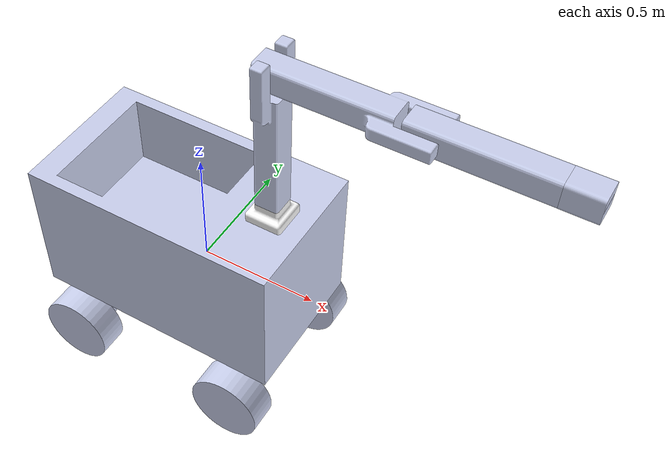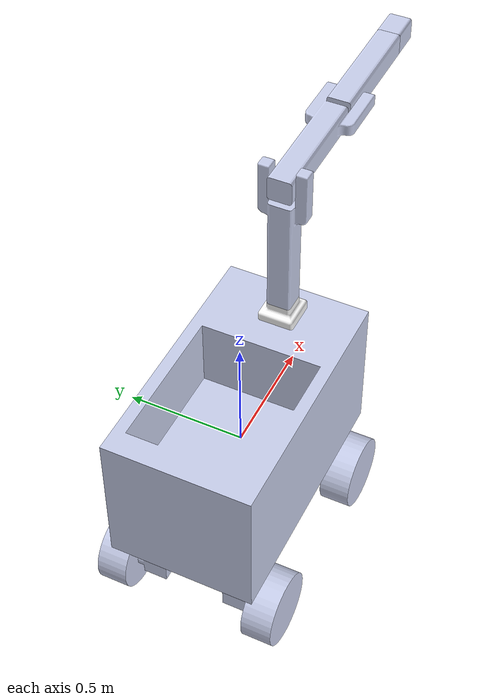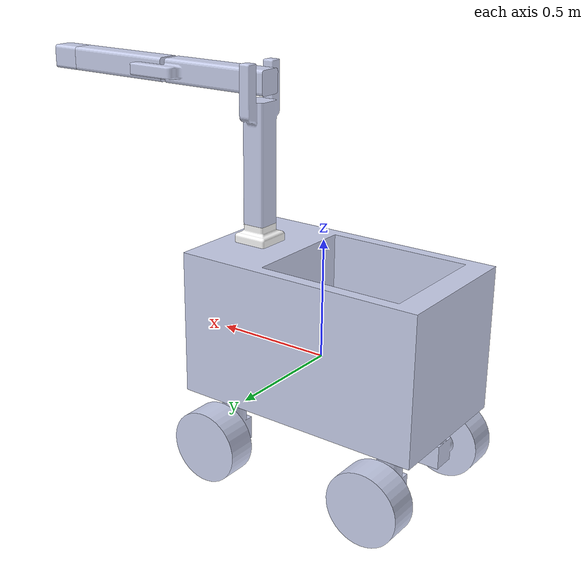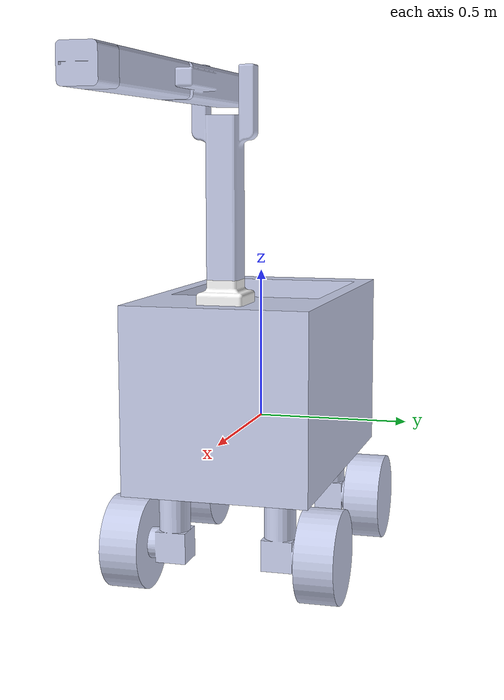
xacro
<?xml version="1.0" ?>
<robot
  name="robot_name" xmlns:xacro="http://ros.org/wiki/xacro">

  <xacro:macro name="wheel_color">
    <visual>
    <material>
        <ambient>0.0 0.0 0.0 1</ambient>
        <diffuse>0.0 0.0 0.0 1</diffuse>
        <specular>0.1 0.1 0.1 1</specular>
        <emissive>0 0 0 0</emissive>
    </material>
    </visual>
  </xacro:macro>

  <link name="dummy_link"></link>
  <link
    name="base_link">
    <inertial>
      <origin
        xyz="-0.0073033 -0.023562 0.069997"
        rpy="0 0 0" />
      <mass
        value="5" />
      <inertia
        ixx="18.833"
        ixy="-1.0074E-15"
        ixz="-2.3889"
        iyy="41.12"
        iyz="-1.2296E-15"
        izz="42.702" />
    </inertial>
    <visual>
      <origin
        xyz="0 0 0"
        rpy="0 0 0" />
      <geometry>
        <mesh
          filename="package://busbot/meshes/base_link.STL" />
      </geometry>
      <material
        name="">
        <color
          rgba="0.79216 0.81961 0.93333 1" />
      </material>
    </visual>
    <collision>
      <origin
        xyz="0 0 0"
        rpy="0 0 0" />
      <geometry>
        <mesh
          filename="package://busbot/meshes/base_link.STL" />
      </geometry>
    </collision>
  </link>
  <joint name="dummy_joint" type="fixed">
    <origin rpy="0 0 0" xyz="0 0 0" />
    <parent link="dummy_link"/>
    <child link="base_link"/>
  </joint>
  <link
    name="fl_axle_link">
    <inertial>
      <origin
        xyz="0.014194 0 0.22795"
        rpy="0 0 0" />
      <mass
        value="4.0553" />
      <inertia
        ixx="0.059172"
        ixy="-8.8354E-19"
        ixz="-0.0066169"
        iyy="0.063463"
        iyz="-2.7904E-18"
        izz="0.009975" />
    </inertial>
    <visual>
      <origin
        xyz="0 0 0"
        rpy="0 0 0" />
      <geometry>
        <mesh
          filename="package://busbot/meshes/fl_axle_link.STL" />
      </geometry>
      <material
        name="">
        <color
          rgba="0.79216 0.81961 0.93333 1" />
      </material>
    </visual>
    <collision>
      <origin
        xyz="0 0 0"
        rpy="0 0 0" />
      <geometry>
        <mesh
          filename="package://busbot/meshes/fl_axle_link.STL" />
      </geometry>
    </collision>
  </link>
  <joint
    name="fl_axle_joint"
    type="revolute">
    <origin
      xyz="0.33385 0.15424 -0.035521"
      rpy="3.1416 0 1.5708" />
    <parent
      link="base_link" />
    <child
      link="fl_axle_link" />
    <axis
      xyz="0 0 1" />
    <limit
      lower="-3.14"
      upper="3.14"
      effort="100"
      velocity="1000" />
  </joint>
  <link
    name="fl_wheel_link">
    <inertial>
      <origin
        xyz="0 0 -0.065272"
        rpy="0 0 0" />
      <mass
        value="3" />
      <inertia
        ixx="0.065282"
        ixy="1.7347E-18"
        ixz="1.7758E-20"
        iyy="0.065282"
        iyz="1.0932E-20"
        izz="0.10708" />
    </inertial>
    <visual>
      <origin
        xyz="0 0 0"
        rpy="0 0 0" />
      <geometry>
        <mesh
          filename="package://busbot/meshes/fl_wheel_link.STL" />
      </geometry>
      <material
        name="">
        <color
          rgba="0.79608 0.82353 0.93725 1" />
      </material>
    </visual>
    <collision>
      <origin
        xyz="0 0 0"
        rpy="0 0 0" />
      <geometry>
        <mesh
          filename="package://busbot/meshes/fl_wheel_link.STL" />
      </geometry>
    </collision>
  </link>
  <joint
    name="fl_wheel_joint"
    type="continuous">
    <origin
      xyz="0.07874 0 0.3429"
      rpy="-1.5708 0.17044 1.5708" />
    <parent
      link="fl_axle_link" />
    <child
      link="fl_wheel_link" />
    <axis
      xyz="0 0 -1" />
    <limit
      effort="100"
      velocity="1000" />
  </joint>
  <link
    name="fr_axle_link">
    <inertial>
      <origin
        xyz="0.014194 -5.5511E-17 0.22795"
        rpy="0 0 0" />
      <mass
        value="4.0553" />
      <inertia
        ixx="0.059172"
        ixy="-2.3831E-18"
        ixz="-0.0066169"
        iyy="0.063463"
        iyz="1.6239E-18"
        izz="0.009975" />
    </inertial>
    <visual>
      <origin
        xyz="0 0 0"
        rpy="0 0 0" />
      <geometry>
        <mesh
          filename="package://busbot/meshes/fr_axle_link.STL" />
      </geometry>
      <material
        name="">
        <color
          rgba="0.79216 0.81961 0.93333 1" />
      </material>
    </visual>
    <collision>
      <origin
        xyz="0 0 0"
        rpy="0 0 0" />
      <geometry>
        <mesh
          filename="package://busbot/meshes/fr_axle_link.STL" />
      </geometry>
    </collision>
  </link>
  <joint
    name="fr_axle_joint"
    type="revolute">
    <origin
      xyz="0.33385 -0.20136 -0.035521"
      rpy="3.1416 0 -1.5708" />
    <parent
      link="base_link" />
    <child
      link="fr_axle_link" />
    <axis
      xyz="0 0 1" />
    <limit
      lower="-3.14"
      upper="3.14"
      effort="100"
      velocity="1000" />
  </joint>
  <link
    name="fr_wheel_link">
    <inertial>
      <origin
        xyz="5.5511E-17 -2.7756E-17 -0.065272"
        rpy="0 0 0" />
      <mass
        value="3" />
      <inertia
        ixx="0.065282"
        ixy="1.7347E-18"
        ixz="-2.4993E-18"
        iyy="0.065282"
        iyz="4.8336E-19"
        izz="0.10708" />
    </inertial>
    <visual>
      <origin
        xyz="0 0 0"
        rpy="0 0 0" />
      <geometry>
        <mesh
          filename="package://busbot/meshes/fr_wheel_link.STL" />
      </geometry>
      <material
        name="">
        <color
          rgba="0.79608 0.82353 0.93725 1" />
      </material>
    </visual>
    <collision>
      <origin
        xyz="0 0 0"
        rpy="0 0 0" />
      <geometry>
        <mesh
          filename="package://busbot/meshes/fr_wheel_link.STL" />
      </geometry>
    </collision>
  </link>
  <joint
    name="fr_wheel_joint"
    type="continuous">
    <origin
      xyz="0.07874 0 0.3429"
      rpy="1.5707963267949 -0.506662334036525 -1.5707963267949" />
    <parent
      link="fr_axle_link" />
    <child
      link="fr_wheel_link" />
    <axis
      xyz="0 0 -1" />
    <limit
      effort="100"
      velocity="1000" />
  </joint>
  <link
    name="bl_axle_link">
    <inertial>
      <origin
        xyz="0.014194 5.5511E-17 0.22795"
        rpy="0 0 0" />
      <mass
        value="4.0553" />
      <inertia
        ixx="0.059172"
        ixy="-1.0054E-18"
        ixz="-0.0066169"
        iyy="0.063463"
        iyz="-2.0351E-18"
        izz="0.009975" />
    </inertial>
    <visual>
      <origin
        xyz="0 0 0"
        rpy="0 0 0" />
      <geometry>
        <mesh
          filename="package://busbot/meshes/bl_axle_link.STL" />
      </geometry>
      <material
        name="">
        <color
          rgba="0.79216 0.81961 0.93333 1" />
      </material>
    </visual>
    <collision>
      <origin
        xyz="0 0 0"
        rpy="0 0 0" />
      <geometry>
        <mesh
          filename="package://busbot/meshes/bl_axle_link.STL" />
      </geometry>
    </collision>
  </link>
  <joint
    name="bl_axle_joint"
    type="fixed">
    <origin
      xyz="-0.42815 0.15424 -0.035521"
      rpy="3.1416 0 1.5708" />
    <parent
      link="base_link" />
    <child
      link="bl_axle_link" />
    <axis
      xyz="0 0 0" />
  </joint>
  <link
    name="bl_wheel_link">
    <inertial>
      <origin
        xyz="0 5.5511E-17 -0.065272"
        rpy="0 0 0" />
      <mass
        value="3" />
      <inertia
        ixx="0.065282"
        ixy="3.4694E-18"
        ixz="-2.174E-18"
        iyy="0.065282"
        iyz="-3.6224E-19"
        izz="0.10708" />
    </inertial>
    <visual>
      <origin
        xyz="0 0 0"
        rpy="0 0 0" />
      <geometry>
        <mesh
          filename="package://busbot/meshes/bl_wheel_link.STL" />
      </geometry>
      <material
        name="">
        <color
          rgba="0.79608 0.82353 0.93725 1" />
      </material>
    </visual>
    <collision>
      <origin
        xyz="0 0 0"
        rpy="0 0 0" />
      <geometry>
        <mesh
          filename="package://busbot/meshes/bl_wheel_link.STL" />
      </geometry>
    </collision>
  </link>
  <joint
    name="bl_wheel_joint"
    type="continuous">
    <origin
      xyz="0.0787399999999999 0 0.3429"
      rpy="-1.5707963267949 1.35941937592494 1.5707963267949" />
    <parent
      link="bl_axle_link" />
    <child
      link="bl_wheel_link" />
    <axis
      xyz="0 0 -1" />
    <limit
      effort="100"
      velocity="1000" />
  </joint>
  <link
    name="br_axle_link">
    <inertial>
      <origin
        xyz="0.014194 -5.5511E-17 0.22795"
        rpy="0 0 0" />
      <mass
        value="4.0553" />
      <inertia
        ixx="0.059172"
        ixy="-1.98E-18"
        ixz="-0.0066169"
        iyy="0.063463"
        iyz="-1.1155E-18"
        izz="0.009975" />
    </inertial>
    <visual>
      <origin
        xyz="0 0 0"
        rpy="0 0 0" />
      <geometry>
        <mesh
          filename="package://busbot/meshes/br_axle_link.STL" />
      </geometry>
      <material
        name="">
        <color
          rgba="0.79216 0.81961 0.93333 1" />
      </material>
    </visual>
    <collision>
      <origin
        xyz="0 0 0"
        rpy="0 0 0" />
      <geometry>
        <mesh
          filename="package://busbot/meshes/br_axle_link.STL" />
      </geometry>
    </collision>
  </link>
  <joint
    name="br_axle_joint"
    type="fixed">
    <origin
      xyz="-0.42815 -0.20136 -0.035521"
      rpy="3.1416 0 -1.5708" />
    <parent
      link="base_link" />
    <child
      link="br_axle_link" />
    <axis
      xyz="0 0 0" />
  </joint>
  <link
    name="br_wheel_link">
    <inertial>
      <origin
        xyz="0 0 -0.065272"
        rpy="0 0 0" />
      <mass
        value="3" />
      <inertia
        ixx="0.065282"
        ixy="0"
        ixz="1.0503E-19"
        iyy="0.065282"
        iyz="4.6168E-20"
        izz="0.10708" />
    </inertial>
    <visual>
      <origin
        xyz="0 0 0"
        rpy="0 0 0" />
      <geometry>
        <mesh
          filename="package://busbot/meshes/br_wheel_link.STL" />
      </geometry>
      <material
        name="">
        <color
          rgba="0.79608 0.82353 0.93725 1" />
      </material>
    </visual>
    <collision>
      <origin
        xyz="0 0 0"
        rpy="0 0 0" />
      <geometry>
        <mesh
          filename="package://busbot/meshes/br_wheel_link.STL" />
      </geometry>
    </collision>
  </link>
  <joint
    name="br_wheel_joint"
    type="continuous">
    <origin
      xyz="0.0787399999999999 0 0.3429"
      rpy="1.5707963267949 0.431002781851365 -1.5707963267949" />
    <parent
      link="br_axle_link" />
    <child
      link="br_wheel_link" />
    <axis
      xyz="0 0 -1" />
    <limit
      effort="100"
      velocity="1000" />
  </joint>
  <link
    name="man_base_link">
    <inertial>
      <origin
        xyz="0.33385 -0.023562 0.42168"
        rpy="-1.5708 0 -1.5708" />
      <mass
        value="1" />
      <inertia
        ixx="0.20413"
        ixy="3.2162E-18"
        ixz="-3.544E-11"
        iyy="0.015893"
        iyz="2.2005E-16"
        izz="0.21084" />
    </inertial>
    <visual>
      <origin
        xyz="0 0 0"
        rpy="0 0 0" />
      <geometry>
        <mesh
          filename="package://busbot/meshes/man_base_link.STL" />
      </geometry>
      <material
        name="">
        <color
          rgba="1 1 1 1" />
      </material>
    </visual>
    <collision>
      <origin
        xyz="0 0 0"
        rpy="0 0 0" />
      <geometry>
        <mesh
          filename="package://busbot/meshes/man_base_link.STL" />
      </geometry>
    </collision>
  </link>
  <joint
    name="man_base_joint"
    type="fixed">
    <origin
      xyz="0.33385 -0.023562 0.42168"
      rpy="-1.5708 0 -1.5708" />
    <parent
      link="base_link" />
    <child
      link="man_base_link" />
    <axis
      xyz="0 0 0" />
  </joint>
  <link
    name="link_1">
    <inertial>
      <origin
        xyz="-1.7347E-17 -0.31055 3.3307E-16"
        rpy="0 0 0" />
      <mass
        value="1" />
      <inertia
        ixx="0.20413"
        ixy="3.2162E-18"
        ixz="-3.544E-11"
        iyy="0.015893"
        iyz="2.2005E-16"
        izz="0.21084" />
    </inertial>
    <visual>
      <origin
        xyz="0 0 0"
        rpy="0 0 0" />
      <geometry>
        <mesh
          filename="package://busbot/meshes/link_1.STL" />
      </geometry>
      <material
        name="">
        <color
          rgba="0.79216 0.81961 0.93333 1" />
      </material>
    </visual>
    <collision>
      <origin
        xyz="0 0 0"
        rpy="0 0 0" />
      <geometry>
        <mesh
          filename="package://busbot/meshes/link_1.STL" />
      </geometry>
    </collision>
  </link>
  <joint
    name="joint_0"
    type="revolute">
    <origin
      xyz="0 -0.0761999999999999 0"
      rpy="0 0 0" />
    <parent
      link="man_base_link" />
    <child
      link="link_1" />
    <axis
      xyz="0 -1 0" />
    <limit
      lower="-3.14"
      upper="3.14"
      effort="100"
      velocity="1000" />
  </joint>
  <link
    name="link_2">
    <inertial>
      <origin
        xyz="-3.0878E-16 -0.31189 -2.2204E-16"
        rpy="0 0 0" />
      <mass
        value="0.75" />
      <inertia
        ixx="0.20212"
        ixy="-1.6857E-16"
        ixz="-3.544E-11"
        iyy="0.015851"
        iyz="-4.4604E-18"
        izz="0.20878" />
    </inertial>
    <visual>
      <origin
        xyz="0 0 0"
        rpy="0 0 0" />
      <geometry>
        <mesh
          filename="package://busbot/meshes/link_2.STL" />
      </geometry>
      <material
        name="">
        <color
          rgba="0.79216 0.81961 0.93333 1" />
      </material>
    </visual>
    <collision>
      <origin
        xyz="0 0 0"
        rpy="0 0 0" />
      <geometry>
        <mesh
          filename="package://busbot/meshes/link_2.STL" />
      </geometry>
    </collision>
  </link>
  <joint
    name="joint_1"
    type="revolute">
    <origin
      xyz="0 -0.5842 -0.0508"
      rpy="-1.5708 0 0" />
    <parent
      link="link_1" />
    <child
      link="link_2" />
    <axis
      xyz="-1 0 0" />
    <limit
      lower="-3.14"
      upper="3.14"
      effort="100"
      velocity="1000" />
  </joint>
  <link
    name="link_3">
    <inertial>
      <origin
        xyz="-2.6021E-16 -0.25686 0"
        rpy="0 0 0" />
      <mass
        value="0.5" />
      <inertia
        ixx="0.11454"
        ixy="-1.0394E-16"
        ixz="-2.647E-19"
        iyy="0.0086553"
        iyz="-3.6404E-18"
        izz="0.1145" />
    </inertial>
    <visual>
      <origin
        xyz="0 0 0"
        rpy="0 0 0" />
      <geometry>
        <mesh
          filename="package://busbot/meshes/link_3.STL" />
      </geometry>
      <material
        name="">
        <color
          rgba="0.79216 0.81961 0.93333 1" />
      </material>
    </visual>
    <collision>
      <origin
        xyz="0 0 0"
        rpy="0 0 0" />
      <geometry>
        <mesh
          filename="package://busbot/meshes/link_3.STL" />
      </geometry>
    </collision>
  </link>
  <joint
    name="joint_2"
    type ="revolute">
    <origin
      xyz="0 -0.5334 0"
      rpy="0 0 0" />
    <parent
      link="link_2" />
    <child
      link="link_3" />
    <axis
      xyz="-1 0 0" />
    <limit
      lower="-3.14"
      upper="3.14"
      effort="100"
      velocity="1000" />
  </joint>
  <link
    name="link_4">
    <inertial>
      <origin
        xyz="-2.4286E-17 0.06332 0"
        rpy="0 0 0" />
      <mass
        value="0.25" />
      <inertia
        ixx="0.0027129"
        ixy="1.4485E-19"
        ixz="7.7428E-20"
        iyy="0.0021556"
        iyz="-1.1919E-19"
        izz="0.0027" />
    </inertial>
    <visual>
      <origin
        xyz="0 0 0"
        rpy="0 0 0" />
      <geometry>
        <mesh
          filename="package://busbot/meshes/link_4.STL" />
      </geometry>
      <material
        name="">
        <color
          rgba="0.79216 0.81961 0.93333 1" />
      </material>
    </visual>
    <collision>
      <origin
        xyz="0 0 0"
        rpy="0 0 0" />
      <geometry>
        <mesh
          filename="package://busbot/meshes/link_4.STL" />
      </geometry>
    </collision>
  </link>
  <joint
    name="joint_3"
    type="revolute">
    <origin
      xyz="0 -0.508 0"
      rpy="0 0 3.14159265358979" />
    <parent
      link="link_3" />
    <child
      link="link_4" />
    <axis
      xyz="0 1 0" />
    <limit
      lower="-3.14"
      upper="3.14"
      effort="100"
      velocity="1000" />
  </joint>

  <ros2_control name="GazeboSystem" type="system">
    <hardware>
        <plugin>gazebo_ros2_control/GazeboSystem</plugin>
    </hardware>
  # Velocity Controllers

  <joint name="br_wheel_joint">
      <command_interface name="velocity">
          <param name="min">-1000.0</param>
          <param name="max">1000.0</param>
      </command_interface>
      <state_interface name="position"/>
      <state_interface name="velocity"/>
  </joint>

  <joint name="bl_wheel_joint">
      <command_interface name="velocity">
          <param name="min">-1000.0</param>
          <param name="max">1000.0</param>
      </command_interface>
      <state_interface name="position"/>
      <state_interface name="velocity"/>
  </joint>

  <joint name="fl_wheel_joint">
      <command_interface name="velocity">
          <param name="min">-1000.0</param>
          <param name="max">1000.0</param>
      </command_interface>
      <state_interface name="position"/>
      <state_interface name="velocity"/>
  </joint>

  <joint name="fr_wheel_joint">
      <command_interface name="velocity">
          <param name="min">-1000.0</param>
          <param name="max">1000.0</param>
      </command_interface>
      <state_interface name="position"/>
      <state_interface name="velocity"/>
  </joint>

  # Position Controller
  <joint name="fl_axle_joint">
      <command_interface name="position">
          <param name="min">-3.14</param>
          <param name="max">3.14</param>
      </command_interface>
      <state_interface name="position"/>
      <state_interface name="velocity"/>
  </joint>

  <joint name="fl_axle_joint">
      <command_interface name="velocity">
          <param name="min">-3.14</param>
          <param name="max">3.14</param>
      </command_interface>
      <state_interface name="position"/>
      <state_interface name="velocity"/>
  </joint>

  <joint name="fr_axle_joint">
      <command_interface name="position">
          <param name="min">-3.14</param>
          <param name="max">3.14</param>
      </command_interface>
      <state_interface name="position"/>
      <state_interface name="velocity"/>
  </joint>

  <joint name="fr_axle_joint">
      <command_interface name="velocity">
          <param name="min">-3.14</param>
          <param name="max">3.14</param>
      </command_interface>
      <state_interface name="position"/>
      <state_interface name="velocity"/>
  </joint>

  <joint name="joint_0">
      <command_interface name="position">
          <param name="min">-3.14</param>
          <param name="max">3.14</param>
      </command_interface>
      <state_interface name="position"/>
      <state_interface name="velocity"/>
  </joint>

  <joint name="joint_0">
      <command_interface name="velocity">
          <param name="min">-3.14</param>
          <param name="max">3.14</param>
      </command_interface>
      <state_interface name="position"/>
      <state_interface name="velocity"/>
  </joint>

  <joint name="joint_1">
      <command_interface name="position">
          <param name="min">-3.14</param>
          <param name="max">3.14</param>
      </command_interface>
      <state_interface name="position"/>
      <state_interface name="velocity"/>
  </joint>

  <joint name="joint_1">
      <command_interface name="velocity">
          <param name="min">-3.14</param>
          <param name="max">3.14</param>
      </command_interface>
      <state_interface name="position"/>
      <state_interface name="velocity"/>
  </joint>

  <joint name="joint_2">
      <command_interface name="position">
          <param name="min">-3.14</param>
          <param name="max">3.14</param>
      </command_interface>
      <state_interface name="position"/>
      <state_interface name="velocity"/>
  </joint>

  <joint name="joint_2">
      <command_interface name="velocity">
          <param name="min">-3.14</param>
          <param name="max">3.14</param>
      </command_interface>
      <state_interface name="position"/>
      <state_interface name="velocity"/>
  </joint>

  <joint name="joint_3">
      <command_interface name="position">
          <param name="min">-3.14</param>
          <param name="max">3.14</param>
      </command_interface>
      <state_interface name="position"/>
      <state_interface name="velocity"/>
  </joint>

  <joint name="joint_3">
      <command_interface name="velocity">
          <param name="min">-3.14</param>
          <param name="max">3.14</param>
      </command_interface>
      <state_interface name="position"/>
      <state_interface name="velocity"/>
  </joint>

  </ros2_control>

  <gazebo>
    <plugin filename="libgazebo_ros2_control.so" name="gazebo_ros2_control">
        <parameters>$(find busbot)/config/control.yaml</parameters>
    </plugin>
  </gazebo>

  <gazebo reference="fr_wheel_link">
      <xacro:wheel_color />
  </gazebo>

  <gazebo reference="br_wheel_link">
      <xacro:wheel_color />
  </gazebo>

  <gazebo reference="fl_wheel_link">
      <xacro:wheel_color />
  </gazebo>

  <gazebo reference="bl_wheel_link">
      <xacro:wheel_color />
  </gazebo>

  <gazebo reference="base_link">
    <gravity>true</gravity>
    <sensor name="imu_sensor" type="imu">
      <always_on>true</always_on>
      <update_rate>100</update_rate>
      <visualize>true</visualize>
      <topic>__default_topic__</topic>
      <plugin filename="libgazebo_ros_imu_sensor.so" name="imu_plugin">
        <topicName>imu</topicName>
        <bodyName>base_link</bodyName>
        <updateRateHZ>10.0</updateRateHZ>
        <gaussianNoise>0.0</gaussianNoise>
        <xyzOffset>0 0 0</xyzOffset>
        <rpyOffset>0 0 0</rpyOffset>
        <frameName>base_link</frameName>
        <initialOrientationAsReference>false</initialOrientationAsReference>
      </plugin>
      <pose>0 0 0 0 0 0</pose>
    </sensor>
  </gazebo>

  <gazebo>
    <plugin name='vacuum_gripper' filename='libgazebo_ros_vacuum_gripper.so'>

      <!-- This part can be commented out if not required -->
      <ros>

        <!-- Add a namespace -->

        <namespace>/busbot</namespace>

        <!-- Remapping service and topic names -->
        <remapping>switch:=custom_switch</remapping>
        <remapping>grasping:=custom_grasping</remapping>
      </ros>

      <!-- Link associated with gripper -->
      <link_name>link_4</link_name>

      <!-- Max distance to attract entities -->
      <max_distance>0.4</max_distance>

      <!-- List of entities to be not attracted by the gripper -->
      <fixed>ground_plane</fixed>
      <fixed>wall</fixed>

    </plugin>
  </gazebo>

</robot>
